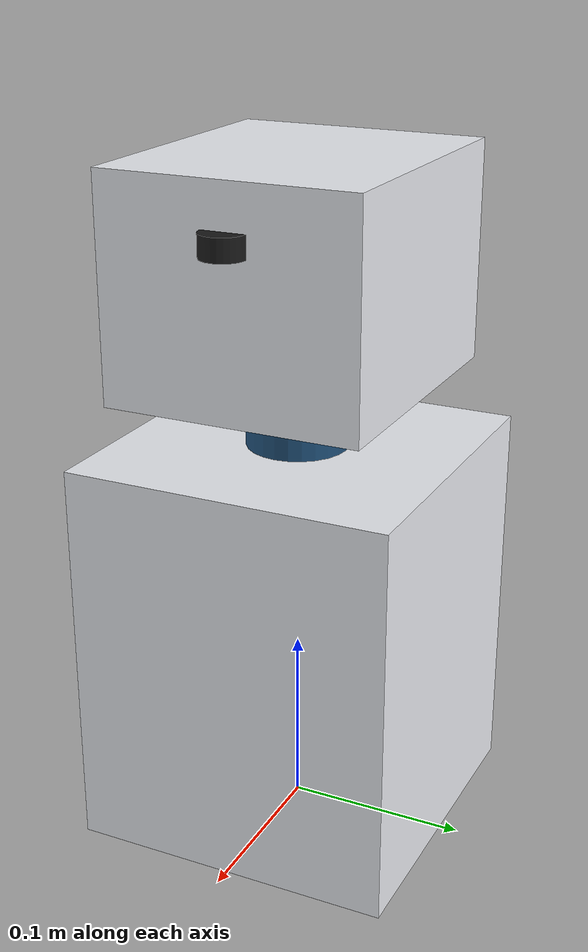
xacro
<?xml version="1.0"?>
<robot xmlns:xacro="http://www.ros.org/wiki/xacro" name="pedcom">

  <xacro:arg name="use_sim" default="true"/>

  <!-- ================================================ propiedades del modelo -->
  <xacro:property name="base_x"   value="0.18"/>
  <xacro:property name="base_y"   value="0.18"/>
  <xacro:property name="base_z"   value="0.22"/>
  <xacro:property name="head_x"   value="0.16"/>
  <xacro:property name="head_y"   value="0.14"/>
  <xacro:property name="head_z"   value="0.12"/>
  <xacro:property name="cam_fov"  value="1.0821"/>   <!-- 62 grados en radianes -->

  <material name="carcasa"><color rgba="0.93 0.94 0.96 1.0"/></material>
  <material name="acento"><color rgba="0.12 0.31 0.47 1.0"/></material>
  <material name="oscuro"><color rgba="0.10 0.10 0.10 1.0"/></material>

  <!-- macro de inercia de un prisma, para no repetir el cálculo -->
  <xacro:macro name="box_inertia" params="m x y z">
    <inertial>
      <mass value="${m}"/>
      <origin xyz="0 0 0"/>
      <inertia ixx="${m*(y*y+z*z)/12}" ixy="0.0" ixz="0.0"
               iyy="${m*(x*x+z*z)/12}" iyz="0.0"
               izz="${m*(x*x+y*y)/12}"/>
    </inertial>
  </xacro:macro>

  <!-- ============================================================== eslabones -->
  <link name="base_link">
    <visual>
      <origin xyz="0 0 ${base_z/2}"/>
      <geometry><box size="${base_x} ${base_y} ${base_z}"/></geometry>
      <material name="carcasa"/>
    </visual>
    <collision>
      <origin xyz="0 0 ${base_z/2}"/>
      <geometry><box size="${base_x} ${base_y} ${base_z}"/></geometry>
    </collision>
    <xacro:box_inertia m="1.8" x="${base_x}" y="${base_y}" z="${base_z}"/>
  </link>

  <link name="neck_yaw_link">
    <visual>
      <geometry><cylinder radius="0.028" length="0.05"/></geometry>
      <material name="acento"/>
    </visual>
    <xacro:box_inertia m="0.12" x="0.05" y="0.05" z="0.05"/>
  </link>

  <link name="head_link">
    <visual>
      <origin xyz="0 0 ${head_z/2}"/>
      <geometry><box size="${head_x} ${head_y} ${head_z}"/></geometry>
      <material name="carcasa"/>
    </visual>
    <collision>
      <origin xyz="0 0 ${head_z/2}"/>
      <geometry><box size="${head_x} ${head_y} ${head_z}"/></geometry>
    </collision>
    <xacro:box_inertia m="0.45" x="${head_x}" y="${head_y}" z="${head_z}"/>
  </link>

  <link name="camera_link">
    <visual>
      <geometry><cylinder radius="0.012" length="0.012"/></geometry>
      <material name="oscuro"/>
    </visual>
    <xacro:box_inertia m="0.02" x="0.02" y="0.02" z="0.02"/>
  </link>

  <!-- Marco óptico: eje Z hacia delante, convención de sensores de imagen -->
  <link name="camera_optical_frame"/>
  <link name="led_ring_link"/>
  <link name="speaker_link"/>

  <!-- ========================================================= articulaciones -->
  <joint name="neck_yaw_joint" type="revolute">
    <parent link="base_link"/>
    <child  link="neck_yaw_link"/>
    <origin xyz="0 0 ${base_z}"/>
    <axis xyz="0 0 1"/>
    <limit lower="-1.5708" upper="1.5708" effort="2.0" velocity="1.047"/>
    <dynamics damping="0.05" friction="0.02"/>
  </joint>

  <joint name="neck_pitch_joint" type="revolute">
    <parent link="neck_yaw_link"/>
    <child  link="head_link"/>
    <origin xyz="0 0 0.035"/>
    <axis xyz="0 1 0"/>
    <limit lower="-0.5236" upper="0.7854" effort="2.0" velocity="0.785"/>
    <dynamics damping="0.05" friction="0.02"/>
  </joint>

  <joint name="camera_joint" type="fixed">
    <parent link="head_link"/>
    <child  link="camera_link"/>
    <origin xyz="${head_x/2} 0 ${head_z*0.75}" rpy="0 0 0"/>
  </joint>

  <joint name="camera_optical_joint" type="fixed">
    <parent link="camera_link"/>
    <child  link="camera_optical_frame"/>
    <origin xyz="0 0 0" rpy="-1.5708 0 -1.5708"/>
  </joint>

  <joint name="led_ring_joint" type="fixed">
    <parent link="head_link"/>
    <child  link="led_ring_link"/>
    <origin xyz="${head_x/2} 0 ${head_z*0.25}"/>
  </joint>

  <joint name="speaker_joint" type="fixed">
    <parent link="base_link"/>
    <child  link="speaker_link"/>
    <origin xyz="${base_x/2} 0 ${base_z*0.4}"/>
  </joint>

  <!-- ============================================================ ros2_control -->
  <ros2_control name="PedComSystem" type="system">
    <hardware>
      <xacro:if value="$(arg use_sim)">
        <plugin>gz_ros2_control/GazeboSimSystem</plugin>
      </xacro:if>
      <xacro:unless value="$(arg use_sim)">
        <plugin>mock_components/GenericSystem</plugin>
      </xacro:unless>
    </hardware>
    <joint name="neck_yaw_joint">
      <command_interface name="position">
        <param name="min">-1.5708</param>
        <param name="max">1.5708</param>
      </command_interface>
      <state_interface name="position"/>
      <state_interface name="velocity"/>
    </joint>
    <joint name="neck_pitch_joint">
      <command_interface name="position">
        <param name="min">-0.5236</param>
        <param name="max">0.7854</param>
      </command_interface>
      <state_interface name="position"/>
      <state_interface name="velocity"/>
    </joint>
  </ros2_control>

  <!-- ============================================== sensores y plugins Gazebo -->
  <gazebo reference="camera_link">
    <sensor name="pedcom_camera" type="camera">
      <pose>0 0 0 0 0 0</pose>
      <update_rate>30</update_rate>
      <always_on>1</always_on>
      <visualize>true</visualize>
      <topic>pedcom/camera/image_raw</topic>
      <camera>
        <horizontal_fov>${cam_fov}</horizontal_fov>
        <image>
          <width>640</width>
          <height>480</height>
          <format>R8G8B8</format>
        </image>
        <clip><near>0.10</near><far>12.0</far></clip>
        <noise><type>gaussian</type><mean>0.0</mean><stddev>0.005</stddev></noise>
      </camera>
    </sensor>
  </gazebo>

  <gazebo>
    <plugin filename="gz_ros2_control-system"
            name="gz_ros2_control::GazeboSimROS2ControlPlugin">
      <parameters>/ros2_ws/install/pedcom_bringup/share/pedcom_bringup/config/ros2_control.yaml</parameters>
    </plugin>
  </gazebo>

</robot>
